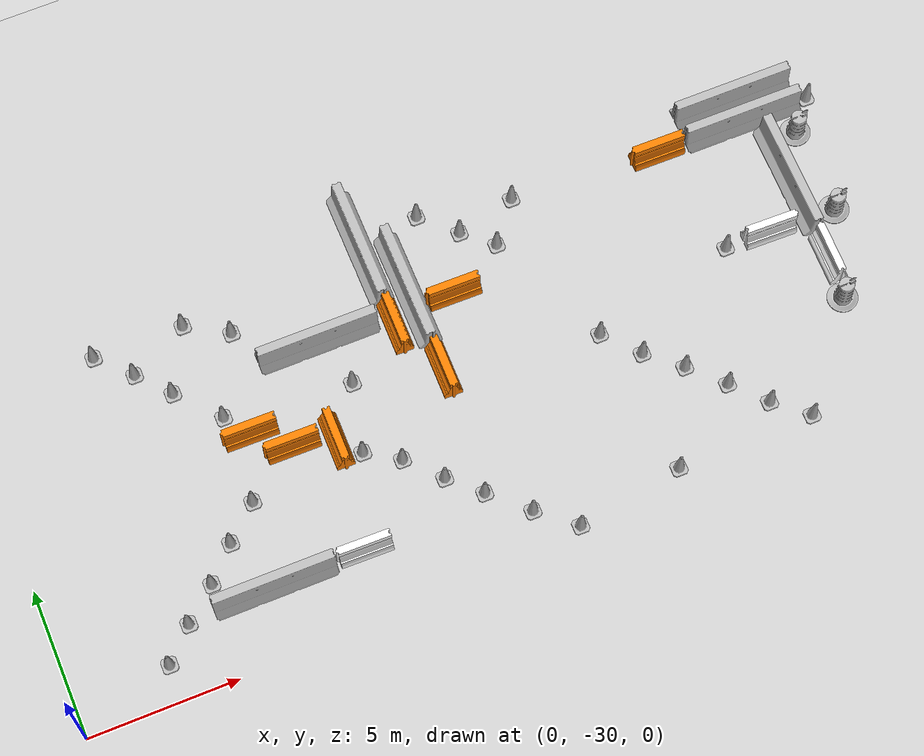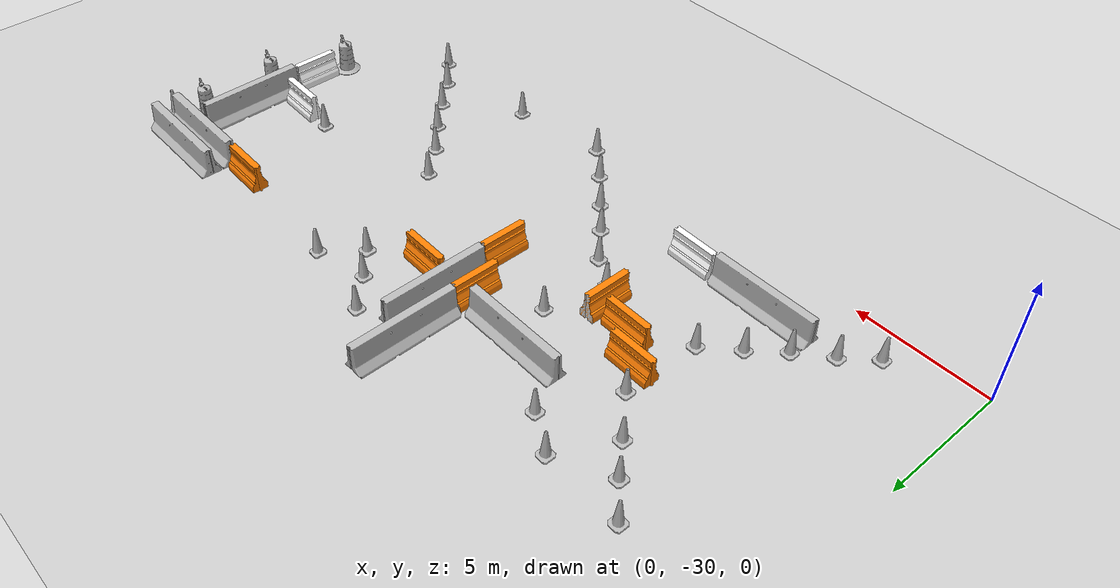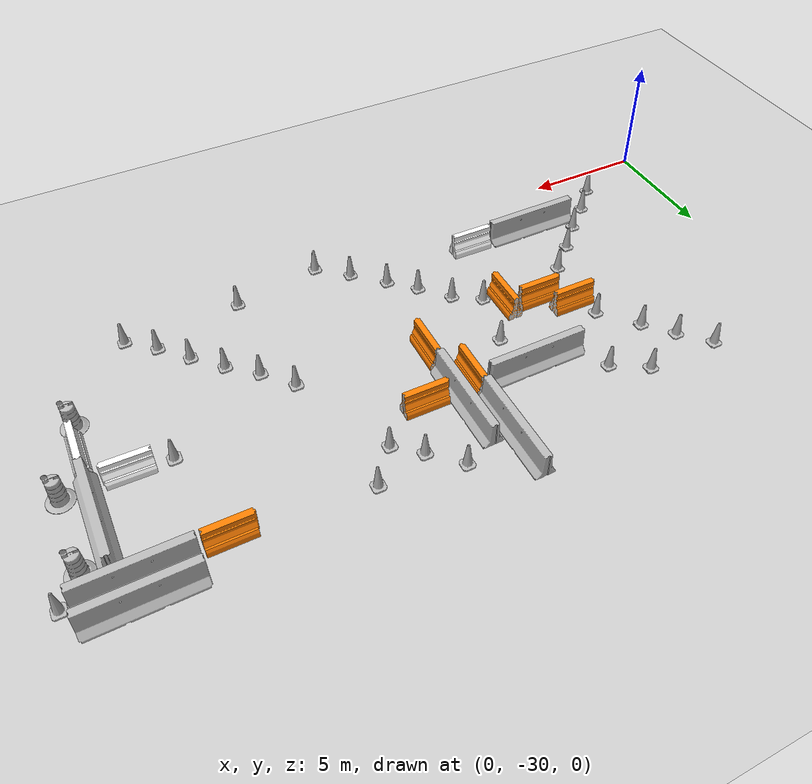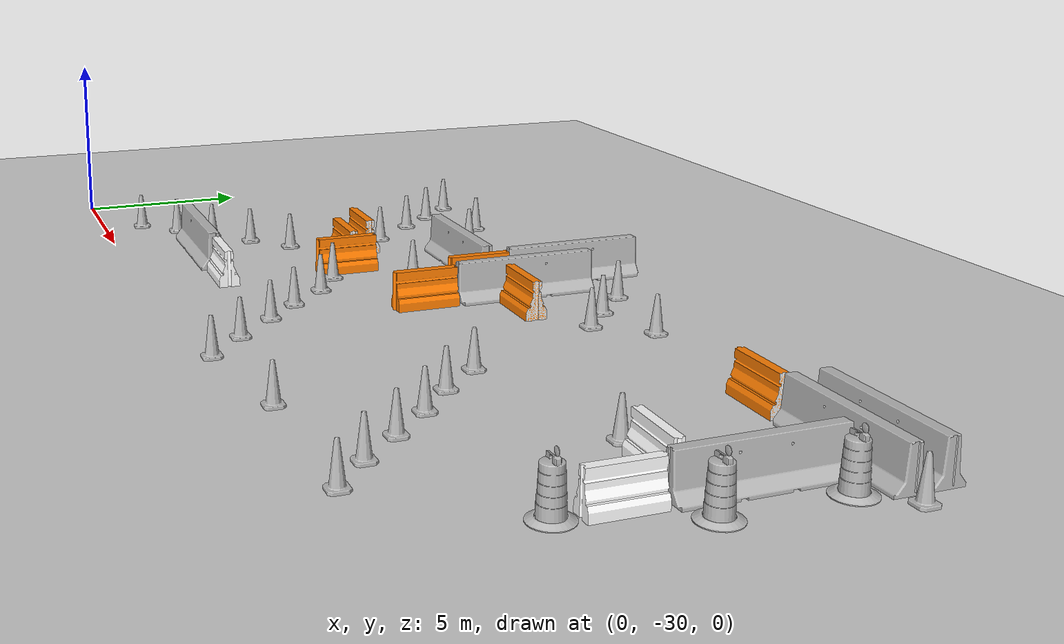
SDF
<sdf version="1.6">
 <world name="default">
  <model name="ground_plane">
   <static>1</static>
   <link name="link">
    <collision name="collision">
     <geometry><plane><normal>0 0 1</normal><size>100 100</size></plane></geometry>
     <surface>
      <contact><collide_bitmask>65535</collide_bitmask></contact>
      <friction><ode><mu>100</mu><mu2>50</mu2></ode></friction>
     </surface>
    </collision>
    <visual name="visual">
     <cast_shadows>0</cast_shadows>
     <geometry><plane><normal>0 0 1</normal><size>100 100</size></plane></geometry>
     <material>
      <script><uri>file://media/materials/scripts/gazebo.material</uri><name>Gazebo/Grey</name></script>
     </material>
    </visual>
   </link>
  </model>
  <model name="jersey_barrier_clone_clone_clone_clone_clone_clone_clone_0_clone">
   <static>1</static>
   <link name="link">
    <visual name="visual">
     <geometry><mesh><uri>model://jersey_barrier/meshes/jersey_barrier.dae</uri></mesh></geometry>
    </visual>
    <collision name="upright">
     <pose>0 0 0.5715 0 -0 0</pose>
     <geometry><box><size>4.06542 0.3063 1.143</size></box></geometry>
    </collision>
    <collision name="base">
     <pose>0 0 0.032258 0 -0 0</pose>
     <geometry><box><size>4.06542 0.8107 0.064516</size></box></geometry>
    </collision>
    <collision name="base2">
     <pose>0 0 0.1 0 -0 0</pose>
     <geometry><box><size>4.06542 0.65 0.1</size></box></geometry>
    </collision>
    <collision name="base3">
     <pose>0 0 0.2 0 -0 0</pose>
     <geometry><box><size>4.06542 0.5 0.1</size></box></geometry>
    </collision>
    <collision name="left-angle">
     <pose>0 -0.224 0.2401 0.9 -0 0</pose>
     <geometry><box><size>4.06542 0.5 0.064516</size></box></geometry>
    </collision>
    <collision name="right-angle">
     <pose>0 0.224 0.2401 -0.9 0 0</pose>
     <geometry><box><size>4.06542 0.5 0.064516</size></box></geometry>
    </collision>
   </link>
   <pose>13.6011 -18.0788 0 0 0 -1.56391</pose>
  </model>
  <model name="Construction Cone_0_clone_0_clone_clone_clone_clone_clone_3_clone_0_clone_clone_clone_1_clone_1_clone_clone_clone_0_clone_clone_clone_4_clone_1_clone_3_clone_clone_1_clone_1">
   <static>1</static>
   <link name="link">
    <collision name="collision">
     <geometry>
      <mesh><scale>10 10 10</scale><uri>model://construction_cone/meshes/construction_cone.dae</uri></mesh>
     </geometry>
    </collision>
    <visual name="visual">
     <geometry>
      <mesh><scale>10 10 10</scale><uri>model://construction_cone/meshes/construction_cone.dae</uri></mesh>
     </geometry>
    </visual>
    <inertial>
     <inertia><ixx>1</ixx><ixy>0</ixy><ixz>0</ixz><iyy>1</iyy><iyz>0</iyz><izz>1</izz></inertia>
     <mass>1</mass>
    </inertial>
   </link>
   <pose>15.7221 -17.7112 -0 0 0 -0.001073</pose>
  </model>
  <model name="Construction Cone_0_clone_0_clone_clone_clone_clone_clone_3_clone_0_clone_clone_clone_1_clone_1_clone_clone_clone_0_clone_clone_clone_4_clone_1_clone_3_clone_clone_1_clone_2">
   <static>1</static>
   <link name="link">
    <collision name="collision">
     <geometry>
      <mesh><scale>10 10 10</scale><uri>model://construction_cone/meshes/construction_cone.dae</uri></mesh>
     </geometry>
    </collision>
    <visual name="visual">
     <geometry>
      <mesh><scale>10 10 10</scale><uri>model://construction_cone/meshes/construction_cone.dae</uri></mesh>
     </geometry>
    </visual>
    <inertial>
     <inertia><ixx>1</ixx><ixy>0</ixy><ixz>0</ixz><iyy>1</iyy><iyz>0</iyz><izz>1</izz></inertia>
     <mass>1</mass>
    </inertial>
   </link>
   <pose>16.8174 -18.7637 -0 0 -1e-06 -0.001073</pose>
  </model>
  <model name="Construction Cone_0_clone_0_clone_clone_clone_clone_clone_3_clone_0_clone_clone_clone_1_clone_1_clone_clone_clone_0_clone_clone_clone_4_clone_1_clone_3_clone_clone_1_clone_4">
   <static>1</static>
   <link name="link">
    <collision name="collision">
     <geometry>
      <mesh><scale>10 10 10</scale><uri>model://construction_cone/meshes/construction_cone.dae</uri></mesh>
     </geometry>
    </collision>
    <visual name="visual">
     <geometry>
      <mesh><scale>10 10 10</scale><uri>model://construction_cone/meshes/construction_cone.dae</uri></mesh>
     </geometry>
    </visual>
    <inertial>
     <inertia><ixx>1</ixx><ixy>0</ixy><ixz>0</ixz><iyy>1</iyy><iyz>0</iyz><izz>1</izz></inertia>
     <mass>1</mass>
    </inertial>
   </link>
   <pose>18.8423 -18.2793 0 -0 -0 -0.001073</pose>
  </model>
  <model name="drc_practice_organge_jersey_barrier_clone_clone_0_clone_0_clone_0_clone_clone_clone_0_clone">
   <static>1</static>
   <link name="link">
    <visual name="visual">
     <geometry>
      <mesh><uri>model://drc_practice_orange_jersey_barrier/meshes/jersey_barrier.dae</uri></mesh>
     </geometry>
    </visual>
    <collision name="collision">
     <geometry>
      <mesh><uri>model://drc_practice_orange_jersey_barrier/meshes/jersey_barrier.dae</uri></mesh>
     </geometry>
    </collision>
   </link>
   <pose>13.6716 -21.0366 0 0 -0 0</pose>
  </model>
  <model name="jersey_barrier_clone_clone_clone_clone_clone_clone_clone_0_clone_clone">
   <static>1</static>
   <link name="link">
    <visual name="visual">
     <geometry><mesh><uri>model://jersey_barrier/meshes/jersey_barrier.dae</uri></mesh></geometry>
    </visual>
    <collision name="upright">
     <pose>0 0 0.5715 0 -0 0</pose>
     <geometry><box><size>4.06542 0.3063 1.143</size></box></geometry>
    </collision>
    <collision name="base">
     <pose>0 0 0.032258 0 -0 0</pose>
     <geometry><box><size>4.06542 0.8107 0.064516</size></box></geometry>
    </collision>
    <collision name="base2">
     <pose>0 0 0.1 0 -0 0</pose>
     <geometry><box><size>4.06542 0.65 0.1</size></box></geometry>
    </collision>
    <collision name="base3">
     <pose>0 0 0.2 0 -0 0</pose>
     <geometry><box><size>4.06542 0.5 0.1</size></box></geometry>
    </collision>
    <collision name="left-angle">
     <pose>0 -0.224 0.2401 0.9 -0 0</pose>
     <geometry><box><size>4.06542 0.5 0.064516</size></box></geometry>
    </collision>
    <collision name="right-angle">
     <pose>0 0.224 0.2401 -0.9 0 0</pose>
     <geometry><box><size>4.06542 0.5 0.064516</size></box></geometry>
    </collision>
   </link>
   <pose>14.5094 -20.0104 0 0 0 -1.56391</pose>
  </model>
  <model name="drc_practice_organge_jersey_barrier_clone_clone_0_clone_0_clone_0_clone_clone_clone_0_clone_clone">
   <static>1</static>
   <link name="link">
    <visual name="visual">
     <geometry>
      <mesh><uri>model://drc_practice_orange_jersey_barrier/meshes/jersey_barrier.dae</uri></mesh>
     </geometry>
    </visual>
    <collision name="collision">
     <geometry>
      <mesh><uri>model://drc_practice_orange_jersey_barrier/meshes/jersey_barrier.dae</uri></mesh>
     </geometry>
    </collision>
   </link>
   <pose>14.5586 -22.9967 0 0 -0 0</pose>
  </model>
  <model name="drc_practice_organge_jersey_barrier_clone_clone_clone_0_clone_clone_clone">
   <static>1</static>
   <link name="link">
    <visual name="visual">
     <geometry>
      <mesh><uri>model://drc_practice_orange_jersey_barrier/meshes/jersey_barrier.dae</uri></mesh>
     </geometry>
    </visual>
    <collision name="collision">
     <geometry>
      <mesh><uri>model://drc_practice_orange_jersey_barrier/meshes/jersey_barrier.dae</uri></mesh>
     </geometry>
    </collision>
   </link>
   <pose>15.835 -20.663 0 0 0 -1.57472</pose>
  </model>
  <model name="Construction Cone_0_clone_0_clone_clone_clone_clone_clone_3_clone_0_clone_clone_clone_1_clone_1_clone_clone_clone_0_clone_clone_clone_4_clone_1_clone_3_clone_clone_1_clone_2_clone">
   <static>1</static>
   <link name="link">
    <collision name="collision">
     <geometry>
      <mesh><scale>10 10 10</scale><uri>model://construction_cone/meshes/construction_cone.dae</uri></mesh>
     </geometry>
    </collision>
    <visual name="visual">
     <geometry>
      <mesh><scale>10 10 10</scale><uri>model://construction_cone/meshes/construction_cone.dae</uri></mesh>
     </geometry>
    </visual>
    <inertial>
     <inertia><ixx>1</ixx><ixy>0</ixy><ixz>0</ixz><iyy>1</iyy><iyz>0</iyz><izz>1</izz></inertia>
     <mass>1</mass>
    </inertial>
   </link>
   <pose>17.7817 -19.6029 -0 0 0 -0.001073</pose>
  </model>
  <model name="jersey_barrier_clone_clone_clone_0_clone_clone_clone_clone_1_clone">
   <static>1</static>
   <link name="link">
    <visual name="visual">
     <geometry><mesh><uri>model://jersey_barrier/meshes/jersey_barrier.dae</uri></mesh></geometry>
    </visual>
    <collision name="upright">
     <pose>0 0 0.5715 0 -0 0</pose>
     <geometry><box><size>4.06542 0.3063 1.143</size></box></geometry>
    </collision>
    <collision name="base">
     <pose>0 0 0.032258 0 -0 0</pose>
     <geometry><box><size>4.06542 0.8107 0.064516</size></box></geometry>
    </collision>
    <collision name="base2">
     <pose>0 0 0.1 0 -0 0</pose>
     <geometry><box><size>4.06542 0.65 0.1</size></box></geometry>
    </collision>
    <collision name="base3">
     <pose>0 0 0.2 0 -0 0</pose>
     <geometry><box><size>4.06542 0.5 0.1</size></box></geometry>
    </collision>
    <collision name="left-angle">
     <pose>0 -0.224 0.2401 0.9 -0 0</pose>
     <geometry><box><size>4.06542 0.5 0.064516</size></box></geometry>
    </collision>
    <collision name="right-angle">
     <pose>0 0.224 0.2401 -0.9 0 0</pose>
     <geometry><box><size>4.06542 0.5 0.064516</size></box></geometry>
    </collision>
   </link>
   <pose>11.1669 -20.5684 0 0 -0 0</pose>
  </model>
  <model name="Construction Cone_0_clone_0_clone_clone_clone_clone_clone_3_clone_0_clone_clone_clone_1_clone_1_clone_clone_clone_0_clone_clone_clone_4_clone_1_clone_3_clone_clone_1_clone_2_clone_0_clone_2_clone_0">
   <static>1</static>
   <link name="link">
    <collision name="collision">
     <geometry>
      <mesh><scale>10 10 10</scale><uri>model://construction_cone/meshes/construction_cone.dae</uri></mesh>
     </geometry>
    </collision>
    <visual name="visual">
     <geometry>
      <mesh><scale>10 10 10</scale><uri>model://construction_cone/meshes/construction_cone.dae</uri></mesh>
     </geometry>
    </visual>
    <inertial>
     <inertia><ixx>1</ixx><ixy>0</ixy><ixz>0</ixz><iyy>1</iyy><iyz>0</iyz><izz>1</izz></inertia>
     <mass>1</mass>
    </inertial>
   </link>
   <pose>7.32518 -18.4455 -0 0 -1e-06 -0.001073</pose>
  </model>
  <model name="Construction Cone_0_clone_0_clone_clone_clone_clone_clone_3_clone_0_clone_clone_clone_1_clone_1_clone_clone_clone_0_clone_clone_clone_4_clone_1_clone_3_clone_clone_1_clone_2_clone_0_clone_2_clone_1">
   <static>1</static>
   <link name="link">
    <collision name="collision">
     <geometry>
      <mesh><scale>10 10 10</scale><uri>model://construction_cone/meshes/construction_cone.dae</uri></mesh>
     </geometry>
    </collision>
    <visual name="visual">
     <geometry>
      <mesh><scale>10 10 10</scale><uri>model://construction_cone/meshes/construction_cone.dae</uri></mesh>
     </geometry>
    </visual>
    <inertial>
     <inertia><ixx>1</ixx><ixy>0</ixy><ixz>0</ixz><iyy>1</iyy><iyz>0</iyz><izz>1</izz></inertia>
     <mass>1</mass>
    </inertial>
   </link>
   <pose>8.69881 -19.2598 -5e-06 -4e-06 1e-06 -0.001073</pose>
  </model>
  <model name="jersey_barrier_clone_clone_clone_0_clone_clone_clone_clone_clone_clone_clone_clone">
   <static>1</static>
   <link name="link">
    <visual name="visual">
     <geometry><mesh><uri>model://jersey_barrier/meshes/jersey_barrier.dae</uri></mesh></geometry>
    </visual>
    <collision name="upright">
     <pose>0 0 0.5715 0 -0 0</pose>
     <geometry><box><size>4.06542 0.3063 1.143</size></box></geometry>
    </collision>
    <collision name="base">
     <pose>0 0 0.032258 0 -0 0</pose>
     <geometry><box><size>4.06542 0.8107 0.064516</size></box></geometry>
    </collision>
    <collision name="base2">
     <pose>0 0 0.1 0 -0 0</pose>
     <geometry><box><size>4.06542 0.65 0.1</size></box></geometry>
    </collision>
    <collision name="base3">
     <pose>0 0 0.2 0 -0 0</pose>
     <geometry><box><size>4.06542 0.5 0.1</size></box></geometry>
    </collision>
    <collision name="left-angle">
     <pose>0 -0.224 0.2401 0.9 -0 0</pose>
     <geometry><box><size>4.06542 0.5 0.064516</size></box></geometry>
    </collision>
    <collision name="right-angle">
     <pose>0 0.224 0.2401 -0.9 0 0</pose>
     <geometry><box><size>4.06542 0.5 0.064516</size></box></geometry>
    </collision>
   </link>
   <pose>26.951 -17.6663 0 0 -0 0</pose>
  </model>
  <model name="jersey_barrier_clone_clone_clone_0_clone_clone_clone_clone_clone_clone_clone_clone_0">
   <static>1</static>
   <link name="link">
    <visual name="visual">
     <geometry><mesh><uri>model://jersey_barrier/meshes/jersey_barrier.dae</uri></mesh></geometry>
    </visual>
    <collision name="upright">
     <pose>0 0 0.5715 0 -0 0</pose>
     <geometry><box><size>4.06542 0.3063 1.143</size></box></geometry>
    </collision>
    <collision name="base">
     <pose>0 0 0.032258 0 -0 0</pose>
     <geometry><box><size>4.06542 0.8107 0.064516</size></box></geometry>
    </collision>
    <collision name="base2">
     <pose>0 0 0.1 0 -0 0</pose>
     <geometry><box><size>4.06542 0.65 0.1</size></box></geometry>
    </collision>
    <collision name="base3">
     <pose>0 0 0.2 0 -0 0</pose>
     <geometry><box><size>4.06542 0.5 0.1</size></box></geometry>
    </collision>
    <collision name="left-angle">
     <pose>0 -0.224 0.2401 0.9 -0 0</pose>
     <geometry><box><size>4.06542 0.5 0.064516</size></box></geometry>
    </collision>
    <collision name="right-angle">
     <pose>0 0.224 0.2401 -0.9 0 0</pose>
     <geometry><box><size>4.06542 0.5 0.064516</size></box></geometry>
    </collision>
   </link>
   <pose>26.952 -18.556 0 0 -0 0</pose>
  </model>
  <model name="Construction Barrel_clone_clone_0_clone_clone_0_clone_clone_clone_clone">
   <static>1</static>
   <link name="link">
    <inertial>
     <pose>0 0 0.4 0 -0 0</pose>
     <mass>500</mass>
     <inertia><ixx>51.2096</ixx><iyy>51.2096</iyy><izz>25</izz><ixy>0</ixy><ixz>0</ixz><iyz>0</iyz></inertia>
    </inertial>
    <collision name="collision">
     <geometry><mesh><uri>model://construction_barrel/meshes/construction_barrel.dae</uri></mesh></geometry>
    </collision>
    <visual name="visual">
     <geometry><mesh><uri>model://construction_barrel/meshes/construction_barrel.dae</uri></mesh></geometry>
    </visual>
   </link>
   <pose>28.4908 -19.5442 0 0 -0 0.001139</pose>
  </model>
  <model name="drc_practice_organge_jersey_barrier_clone_clone_clone_0_clone_clone_0_clone_0">
   <static>1</static>
   <link name="link">
    <visual name="visual">
     <geometry>
      <mesh><uri>model://drc_practice_orange_jersey_barrier/meshes/jersey_barrier.dae</uri></mesh>
     </geometry>
    </visual>
    <collision name="collision">
     <geometry>
      <mesh><uri>model://drc_practice_orange_jersey_barrier/meshes/jersey_barrier.dae</uri></mesh>
     </geometry>
    </collision>
   </link>
   <pose>23.9083 -18.5861 0 0 0 -1.57472</pose>
  </model>
  <model name="jersey_barrier_clone_clone_clone_clone_clone_clone_clone_0_clone_0_clone">
   <static>1</static>
   <link name="link">
    <visual name="visual">
     <geometry><mesh><uri>model://jersey_barrier/meshes/jersey_barrier.dae</uri></mesh></geometry>
    </visual>
    <collision name="upright">
     <pose>0 0 0.5715 0 -0 0</pose>
     <geometry><box><size>4.06542 0.3063 1.143</size></box></geometry>
    </collision>
    <collision name="base">
     <pose>0 0 0.032258 0 -0 0</pose>
     <geometry><box><size>4.06542 0.8107 0.064516</size></box></geometry>
    </collision>
    <collision name="base2">
     <pose>0 0 0.1 0 -0 0</pose>
     <geometry><box><size>4.06542 0.65 0.1</size></box></geometry>
    </collision>
    <collision name="base3">
     <pose>0 0 0.2 0 -0 0</pose>
     <geometry><box><size>4.06542 0.5 0.1</size></box></geometry>
    </collision>
    <collision name="left-angle">
     <pose>0 -0.224 0.2401 0.9 -0 0</pose>
     <geometry><box><size>4.06542 0.5 0.064516</size></box></geometry>
    </collision>
    <collision name="right-angle">
     <pose>0 0.224 0.2401 -0.9 0 0</pose>
     <geometry><box><size>4.06542 0.5 0.064516</size></box></geometry>
    </collision>
   </link>
   <pose>27.586 -21.0671 0 0 0 -1.56391</pose>
  </model>
  <model name="drc_practice_white_jersey_barrier_clone_clone_clone_0_clone_0_clone_clone_0_clone_clone_1_clone">
   <static>1</static>
   <link name="link">
    <visual name="visual">
     <geometry>
      <mesh><uri>model://drc_practice_white_jersey_barrier/meshes/jersey_barrier.dae</uri></mesh>
     </geometry>
    </visual>
    <collision name="collision">
     <geometry>
      <mesh><uri>model://drc_practice_white_jersey_barrier/meshes/jersey_barrier.dae</uri></mesh>
     </geometry>
    </collision>
   </link>
   <pose>27.5893 -24.0652 0 0 -0 3.13979</pose>
  </model>
  <model name="Construction Barrel_clone_clone_0_clone_clone_0_clone_clone_clone_clone_clone_0">
   <static>1</static>
   <link name="link">
    <inertial>
     <pose>0 0 0.4 0 -0 0</pose>
     <mass>500</mass>
     <inertia><ixx>51.2096</ixx><iyy>51.2096</iyy><izz>25</izz><ixy>0</ixy><ixz>0</ixz><iyz>0</iyz></inertia>
    </inertial>
    <collision name="collision">
     <geometry><mesh><uri>model://construction_barrel/meshes/construction_barrel.dae</uri></mesh></geometry>
    </collision>
    <visual name="visual">
     <geometry><mesh><uri>model://construction_barrel/meshes/construction_barrel.dae</uri></mesh></geometry>
    </visual>
   </link>
   <pose>27.4658 -25.4803 0 0 -0 0.001151</pose>
  </model>
  <model name="Construction Barrel_clone_clone_0_clone_clone_0_clone_clone_clone_clone_clone_1">
   <static>1</static>
   <link name="link">
    <inertial>
     <pose>0 0 0.4 0 -0 0</pose>
     <mass>500</mass>
     <inertia><ixx>51.2096</ixx><iyy>51.2096</iyy><izz>25</izz><ixy>0</ixy><ixz>0</ixz><iyz>0</iyz></inertia>
    </inertial>
    <collision name="collision">
     <geometry><mesh><uri>model://construction_barrel/meshes/construction_barrel.dae</uri></mesh></geometry>
    </collision>
    <visual name="visual">
     <geometry><mesh><uri>model://construction_barrel/meshes/construction_barrel.dae</uri></mesh></geometry>
    </visual>
   </link>
   <pose>28.5116 -22.5513 -1e-06 -3e-06 -1e-06 0.001141</pose>
  </model>
  <model name="Construction Cone_0_clone_0_clone_clone_clone_clone_clone_3_clone_0_clone_clone_clone_1_clone_1_clone_clone_clone_0_clone_clone_clone_4_clone_1_clone_3_clone_clone_1_clone_2_clone_clone">
   <static>1</static>
   <link name="link">
    <collision name="collision">
     <geometry>
      <mesh><scale>10 10 10</scale><uri>model://construction_cone/meshes/construction_cone.dae</uri></mesh>
     </geometry>
    </collision>
    <visual name="visual">
     <geometry>
      <mesh><scale>10 10 10</scale><uri>model://construction_cone/meshes/construction_cone.dae</uri></mesh>
     </geometry>
    </visual>
    <inertial>
     <inertia><ixx>1</ixx><ixy>0</ixy><ixz>0</ixz><iyy>1</iyy><iyz>0</iyz><izz>1</izz></inertia>
     <mass>1</mass>
    </inertial>
   </link>
   <pose>19.6724 -23.7253 -0 0 -1e-06 -0.001073</pose>
  </model>
  <model name="Construction Cone_0_clone_0_clone_clone_clone_clone_clone_3_clone_0_clone_clone_clone_1_clone_1_clone_clone_clone_0_clone_clone_clone_4_clone_1_clone_3_clone_clone_1_clone_2_clone_clone_0">
   <static>1</static>
   <link name="link">
    <collision name="collision">
     <geometry>
      <mesh><scale>10 10 10</scale><uri>model://construction_cone/meshes/construction_cone.dae</uri></mesh>
     </geometry>
    </collision>
    <visual name="visual">
     <geometry>
      <mesh><scale>10 10 10</scale><uri>model://construction_cone/meshes/construction_cone.dae</uri></mesh>
     </geometry>
    </visual>
    <inertial>
     <inertia><ixx>1</ixx><ixy>0</ixy><ixz>0</ixz><iyy>1</iyy><iyz>0</iyz><izz>1</izz></inertia>
     <mass>1</mass>
    </inertial>
   </link>
   <pose>20.6781 -24.846 -0 0 0 -0.001073</pose>
  </model>
  <model name="Construction Cone_0_clone_0_clone_clone_clone_clone_clone_3_clone_0_clone_clone_clone_1_clone_1_clone_clone_clone_0_clone_clone_clone_4_clone_1_clone_3_clone_clone_1_clone_2_clone_clone_1">
   <static>1</static>
   <link name="link">
    <collision name="collision">
     <geometry>
      <mesh><scale>10 10 10</scale><uri>model://construction_cone/meshes/construction_cone.dae</uri></mesh>
     </geometry>
    </collision>
    <visual name="visual">
     <geometry>
      <mesh><scale>10 10 10</scale><uri>model://construction_cone/meshes/construction_cone.dae</uri></mesh>
     </geometry>
    </visual>
    <inertial>
     <inertia><ixx>1</ixx><ixy>0</ixy><ixz>0</ixz><iyy>1</iyy><iyz>0</iyz><izz>1</izz></inertia>
     <mass>1</mass>
    </inertial>
   </link>
   <pose>21.7619 -25.7839 -0 0 -1e-06 -0.001073</pose>
  </model>
  <model name="Construction Cone_0_clone_0_clone_clone_clone_clone_clone_3_clone_0_clone_clone_clone_1_clone_1_clone_clone_clone_0_clone_clone_clone_4_clone_1_clone_3_clone_clone_1_clone_2_clone_clone_2">
   <static>1</static>
   <link name="link">
    <collision name="collision">
     <geometry>
      <mesh><scale>10 10 10</scale><uri>model://construction_cone/meshes/construction_cone.dae</uri></mesh>
     </geometry>
    </collision>
    <visual name="visual">
     <geometry>
      <mesh><scale>10 10 10</scale><uri>model://construction_cone/meshes/construction_cone.dae</uri></mesh>
     </geometry>
    </visual>
    <inertial>
     <inertia><ixx>1</ixx><ixy>0</ixy><ixz>0</ixz><iyy>1</iyy><iyz>0</iyz><izz>1</izz></inertia>
     <mass>1</mass>
    </inertial>
   </link>
   <pose>22.7988 -26.8245 0 -0 -0 -0.001073</pose>
  </model>
  <model name="Construction Cone_0_clone_0_clone_clone_clone_clone_clone_3_clone_0_clone_clone_clone_1_clone_1_clone_clone_clone_0_clone_clone_clone_4_clone_1_clone_3_clone_clone_1_clone_2_clone_clone_3">
   <static>1</static>
   <link name="link">
    <collision name="collision">
     <geometry>
      <mesh><scale>10 10 10</scale><uri>model://construction_cone/meshes/construction_cone.dae</uri></mesh>
     </geometry>
    </collision>
    <visual name="visual">
     <geometry>
      <mesh><scale>10 10 10</scale><uri>model://construction_cone/meshes/construction_cone.dae</uri></mesh>
     </geometry>
    </visual>
    <inertial>
     <inertia><ixx>1</ixx><ixy>0</ixy><ixz>0</ixz><iyy>1</iyy><iyz>0</iyz><izz>1</izz></inertia>
     <mass>1</mass>
    </inertial>
   </link>
   <pose>23.7944 -27.8776 -0 0 0 -0.001073</pose>
  </model>
  <model name="Construction Cone_0_clone_0_clone_clone_clone_clone_clone_3_clone_0_clone_clone_clone_1_clone_1_clone_clone_clone_0_clone_clone_clone_4_clone_1_clone_3_clone_clone_1_clone_2_clone_clone_4">
   <static>1</static>
   <link name="link">
    <collision name="collision">
     <geometry>
      <mesh><scale>10 10 10</scale><uri>model://construction_cone/meshes/construction_cone.dae</uri></mesh>
     </geometry>
    </collision>
    <visual name="visual">
     <geometry>
      <mesh><scale>10 10 10</scale><uri>model://construction_cone/meshes/construction_cone.dae</uri></mesh>
     </geometry>
    </visual>
    <inertial>
     <inertia><ixx>1</ixx><ixy>0</ixy><ixz>0</ixz><iyy>1</iyy><iyz>0</iyz><izz>1</izz></inertia>
     <mass>1</mass>
    </inertial>
   </link>
   <pose>24.8689 -28.7862 -0 0 0 -0.001073</pose>
  </model>
  <model name="Construction Cone_0_clone_0_clone_clone_clone_clone_clone_3_clone_0_clone_clone_clone_1_clone_1_clone_clone_clone_0_clone_clone_clone_4_clone_1_clone_3_clone_clone_1_clone_2_clone_clone_5">
   <static>1</static>
   <link name="link">
    <collision name="collision">
     <geometry>
      <mesh><scale>10 10 10</scale><uri>model://construction_cone/meshes/construction_cone.dae</uri></mesh>
     </geometry>
    </collision>
    <visual name="visual">
     <geometry>
      <mesh><scale>10 10 10</scale><uri>model://construction_cone/meshes/construction_cone.dae</uri></mesh>
     </geometry>
    </visual>
    <inertial>
     <inertia><ixx>1</ixx><ixy>0</ixy><ixz>0</ixz><iyy>1</iyy><iyz>0</iyz><izz>1</izz></inertia>
     <mass>1</mass>
    </inertial>
   </link>
   <pose>20.2278 -28.8225 -0 0 -1e-06 -0.001073</pose>
  </model>
  <model name="Construction Cone_0_clone_0_clone_clone_clone_clone_clone_3_clone_0_clone_clone_clone_1_clone_1_clone_clone_clone_0_clone_clone_clone_4_clone_1_clone_3_clone_clone_1_clone_2_clone_clone_5_clone">
   <static>1</static>
   <link name="link">
    <collision name="collision">
     <geometry>
      <mesh><scale>10 10 10</scale><uri>model://construction_cone/meshes/construction_cone.dae</uri></mesh>
     </geometry>
    </collision>
    <visual name="visual">
     <geometry>
      <mesh><scale>10 10 10</scale><uri>model://construction_cone/meshes/construction_cone.dae</uri></mesh>
     </geometry>
    </visual>
    <inertial>
     <inertia><ixx>1</ixx><ixy>0</ixy><ixz>0</ixz><iyy>1</iyy><iyz>0</iyz><izz>1</izz></inertia>
     <mass>1</mass>
    </inertial>
   </link>
   <pose>16.6049 -29.4093 0 -0 -0 -0.001073</pose>
  </model>
  <model name="Construction Cone_0_clone_0_clone_clone_clone_clone_clone_3_clone_0_clone_clone_clone_1_clone_1_clone_clone_clone_0_clone_clone_clone_4_clone_1_clone_3_clone_clone_1_clone_2_clone_clone_5_clone_0">
   <static>1</static>
   <link name="link">
    <collision name="collision">
     <geometry>
      <mesh><scale>10 10 10</scale><uri>model://construction_cone/meshes/construction_cone.dae</uri></mesh>
     </geometry>
    </collision>
    <visual name="visual">
     <geometry>
      <mesh><scale>10 10 10</scale><uri>model://construction_cone/meshes/construction_cone.dae</uri></mesh>
     </geometry>
    </visual>
    <inertial>
     <inertia><ixx>1</ixx><ixy>0</ixy><ixz>0</ixz><iyy>1</iyy><iyz>0</iyz><izz>1</izz></inertia>
     <mass>1</mass>
    </inertial>
   </link>
   <pose>15.4021 -28.3979 -0 -0 -0 -0.001073</pose>
  </model>
  <model name="Construction Cone_0_clone_0_clone_clone_clone_clone_clone_3_clone_0_clone_clone_clone_1_clone_1_clone_clone_clone_0_clone_clone_clone_4_clone_1_clone_3_clone_clone_1_clone_2_clone_clone_5_clone_1">
   <static>1</static>
   <link name="link">
    <collision name="collision">
     <geometry>
      <mesh><scale>10 10 10</scale><uri>model://construction_cone/meshes/construction_cone.dae</uri></mesh>
     </geometry>
    </collision>
    <visual name="visual">
     <geometry>
      <mesh><scale>10 10 10</scale><uri>model://construction_cone/meshes/construction_cone.dae</uri></mesh>
     </geometry>
    </visual>
    <inertial>
     <inertia><ixx>1</ixx><ixy>0</ixy><ixz>0</ixz><iyy>1</iyy><iyz>0</iyz><izz>1</izz></inertia>
     <mass>1</mass>
    </inertial>
   </link>
   <pose>14.2195 -27.2897 -0 0 0 -0.001073</pose>
  </model>
  <model name="Construction Cone_0_clone_0_clone_clone_clone_clone_clone_3_clone_0_clone_clone_clone_1_clone_1_clone_clone_clone_0_clone_clone_clone_4_clone_1_clone_3_clone_clone_1_clone_2_clone_clone_5_clone_2">
   <static>1</static>
   <link name="link">
    <collision name="collision">
     <geometry>
      <mesh><scale>10 10 10</scale><uri>model://construction_cone/meshes/construction_cone.dae</uri></mesh>
     </geometry>
    </collision>
    <visual name="visual">
     <geometry>
      <mesh><scale>10 10 10</scale><uri>model://construction_cone/meshes/construction_cone.dae</uri></mesh>
     </geometry>
    </visual>
    <inertial>
     <inertia><ixx>1</ixx><ixy>0</ixy><ixz>0</ixz><iyy>1</iyy><iyz>0</iyz><izz>1</izz></inertia>
     <mass>1</mass>
    </inertial>
   </link>
   <pose>13.2359 -26.3638 -0 0 0 -0.001073</pose>
  </model>
  <model name="Construction Cone_0_clone_0_clone_clone_clone_clone_clone_3_clone_0_clone_clone_clone_1_clone_1_clone_clone_clone_0_clone_clone_clone_4_clone_1_clone_3_clone_clone_1_clone_2_clone_clone_5_clone_3">
   <static>1</static>
   <link name="link">
    <collision name="collision">
     <geometry>
      <mesh><scale>10 10 10</scale><uri>model://construction_cone/meshes/construction_cone.dae</uri></mesh>
     </geometry>
    </collision>
    <visual name="visual">
     <geometry>
      <mesh><scale>10 10 10</scale><uri>model://construction_cone/meshes/construction_cone.dae</uri></mesh>
     </geometry>
    </visual>
    <inertial>
     <inertia><ixx>1</ixx><ixy>0</ixy><ixz>0</ixz><iyy>1</iyy><iyz>0</iyz><izz>1</izz></inertia>
     <mass>1</mass>
    </inertial>
   </link>
   <pose>12.2245 -25.2933 -6e-06 2e-06 -0 -0.001073</pose>
  </model>
  <model name="drc_practice_organge_jersey_barrier_clone_clone_0_clone_0_clone_0_clone_clone_clone_0_clone_clone_clone">
   <static>1</static>
   <link name="link">
    <visual name="visual">
     <geometry>
      <mesh><uri>model://drc_practice_orange_jersey_barrier/meshes/jersey_barrier.dae</uri></mesh>
     </geometry>
    </visual>
    <collision name="collision">
     <geometry>
      <mesh><uri>model://drc_practice_orange_jersey_barrier/meshes/jersey_barrier.dae</uri></mesh>
     </geometry>
    </collision>
   </link>
   <pose>10.5096 -23.9606 0 0 -0 0</pose>
  </model>
  <model name="Construction Cone_0_clone_0_clone_clone_clone_clone_clone_3_clone_0_clone_clone_clone_1_clone_1_clone_clone_clone_0_clone_clone_clone_4_clone_1_clone_3_clone_clone_1_clone_2_clone_0_clone">
   <static>1</static>
   <link name="link">
    <collision name="collision">
     <geometry>
      <mesh><scale>10 10 10</scale><uri>model://construction_cone/meshes/construction_cone.dae</uri></mesh>
     </geometry>
    </collision>
    <visual name="visual">
     <geometry>
      <mesh><scale>10 10 10</scale><uri>model://construction_cone/meshes/construction_cone.dae</uri></mesh>
     </geometry>
    </visual>
    <inertial>
     <inertia><ixx>1</ixx><ixy>0</ixy><ixz>0</ixz><iyy>1</iyy><iyz>0</iyz><izz>1</izz></inertia>
     <mass>1</mass>
    </inertial>
   </link>
   <pose>11.1479 -24.6005 -6e-06 -4e-06 -0 -0.001073</pose>
  </model>
  <model name="Construction Cone_0_clone_0_clone_clone_clone_clone_clone_3_clone_0_clone_clone_clone_1_clone_1_clone_clone_clone_0_clone_clone_clone_4_clone_1_clone_3_clone_clone_1_clone_2_clone_0_clone_clone">
   <static>1</static>
   <link name="link">
    <collision name="collision">
     <geometry>
      <mesh><scale>10 10 10</scale><uri>model://construction_cone/meshes/construction_cone.dae</uri></mesh>
     </geometry>
    </collision>
    <visual name="visual">
     <geometry>
      <mesh><scale>10 10 10</scale><uri>model://construction_cone/meshes/construction_cone.dae</uri></mesh>
     </geometry>
    </visual>
    <inertial>
     <inertia><ixx>1</ixx><ixy>0</ixy><ixz>0</ixz><iyy>1</iyy><iyz>0</iyz><izz>1</izz></inertia>
     <mass>1</mass>
    </inertial>
   </link>
   <pose>11.6926 -22.3027 -5e-06 -4e-06 1e-06 -0.001073</pose>
  </model>
  <model name="drc_practice_organge_jersey_barrier_clone_clone_clone_0_clone_clone_clone_clone">
   <static>1</static>
   <link name="link">
    <visual name="visual">
     <geometry>
      <mesh><uri>model://drc_practice_orange_jersey_barrier/meshes/jersey_barrier.dae</uri></mesh>
     </geometry>
    </visual>
    <collision name="collision">
     <geometry>
      <mesh><uri>model://drc_practice_orange_jersey_barrier/meshes/jersey_barrier.dae</uri></mesh>
     </geometry>
    </collision>
   </link>
   <pose>9.1621 -23.5781 0 0 0 -1.57472</pose>
  </model>
  <model name="drc_practice_organge_jersey_barrier_clone_clone_clone_0_clone_clone_clone_clone_0">
   <static>1</static>
   <link name="link">
    <visual name="visual">
     <geometry>
      <mesh><uri>model://drc_practice_orange_jersey_barrier/meshes/jersey_barrier.dae</uri></mesh>
     </geometry>
    </visual>
    <collision name="collision">
     <geometry>
      <mesh><uri>model://drc_practice_orange_jersey_barrier/meshes/jersey_barrier.dae</uri></mesh>
     </geometry>
    </collision>
   </link>
   <pose>8.07299 -22.6922 0 0 0 -1.57472</pose>
  </model>
  <model name="Construction Cone_0_clone_0_clone_clone_clone_clone_clone_3_clone_0_clone_clone_clone_1_clone_1_clone_clone_clone_0_clone_clone_clone_4_clone_1_clone_3_clone_clone_1_clone_2_clone_0_clone_clone_clone">
   <static>1</static>
   <link name="link">
    <collision name="collision">
     <geometry>
      <mesh><scale>10 10 10</scale><uri>model://construction_cone/meshes/construction_cone.dae</uri></mesh>
     </geometry>
    </collision>
    <visual name="visual">
     <geometry>
      <mesh><scale>10 10 10</scale><uri>model://construction_cone/meshes/construction_cone.dae</uri></mesh>
     </geometry>
    </visual>
    <inertial>
     <inertia><ixx>1</ixx><ixy>0</ixy><ixz>0</ixz><iyy>1</iyy><iyz>0</iyz><izz>1</izz></inertia>
     <mass>1</mass>
    </inertial>
   </link>
   <pose>7.46808 -21.855 -0 0 -1e-06 -0.001073</pose>
  </model>
  <model name="Construction Cone_0_clone_0_clone_clone_clone_clone_clone_3_clone_0_clone_clone_clone_1_clone_1_clone_clone_clone_0_clone_clone_clone_4_clone_1_clone_3_clone_clone_1_clone_2_clone_0_clone_clone_clone_0">
   <static>1</static>
   <link name="link">
    <collision name="collision">
     <geometry>
      <mesh><scale>10 10 10</scale><uri>model://construction_cone/meshes/construction_cone.dae</uri></mesh>
     </geometry>
    </collision>
    <visual name="visual">
     <geometry>
      <mesh><scale>10 10 10</scale><uri>model://construction_cone/meshes/construction_cone.dae</uri></mesh>
     </geometry>
    </visual>
    <inertial>
     <inertia><ixx>1</ixx><ixy>0</ixy><ixz>0</ixz><iyy>1</iyy><iyz>0</iyz><izz>1</izz></inertia>
     <mass>1</mass>
    </inertial>
   </link>
   <pose>6.24271 -20.4962 -0 0 0 -0.001073</pose>
  </model>
  <model name="Construction Cone_0_clone_0_clone_clone_clone_clone_clone_3_clone_0_clone_clone_clone_1_clone_1_clone_clone_clone_0_clone_clone_clone_4_clone_1_clone_3_clone_clone_1_clone_2_clone_0_clone_clone_clone_1">
   <static>1</static>
   <link name="link">
    <collision name="collision">
     <geometry>
      <mesh><scale>10 10 10</scale><uri>model://construction_cone/meshes/construction_cone.dae</uri></mesh>
     </geometry>
    </collision>
    <visual name="visual">
     <geometry>
      <mesh><scale>10 10 10</scale><uri>model://construction_cone/meshes/construction_cone.dae</uri></mesh>
     </geometry>
    </visual>
    <inertial>
     <inertia><ixx>1</ixx><ixy>0</ixy><ixz>0</ixz><iyy>1</iyy><iyz>0</iyz><izz>1</izz></inertia>
     <mass>1</mass>
    </inertial>
   </link>
   <pose>5.3236 -19.4502 -0 0 -1e-06 -0.001073</pose>
  </model>
  <model name="Construction Cone_0_clone_0_clone_clone_clone_clone_clone_3_clone_0_clone_clone_clone_1_clone_1_clone_clone_clone_0_clone_clone_clone_4_clone_1_clone_3_clone_clone_1_clone_2_clone_0_clone_clone_clone_2">
   <static>1</static>
   <link name="link">
    <collision name="collision">
     <geometry>
      <mesh><scale>10 10 10</scale><uri>model://construction_cone/meshes/construction_cone.dae</uri></mesh>
     </geometry>
    </collision>
    <visual name="visual">
     <geometry>
      <mesh><scale>10 10 10</scale><uri>model://construction_cone/meshes/construction_cone.dae</uri></mesh>
     </geometry>
    </visual>
    <inertial>
     <inertia><ixx>1</ixx><ixy>0</ixy><ixz>0</ixz><iyy>1</iyy><iyz>0</iyz><izz>1</izz></inertia>
     <mass>1</mass>
    </inertial>
   </link>
   <pose>4.29865 -18.4055 -0 0 0 -0.001073</pose>
  </model>
  <model name="Construction Cone_0_clone_0_clone_clone_clone_clone_clone_3_clone_0_clone_clone_clone_1_clone_1_clone_clone_clone_0_clone_clone_clone_4_clone_1_clone_3_clone_clone_1_clone_2_clone_0_clone_clone_0">
   <static>1</static>
   <link name="link">
    <collision name="collision">
     <geometry>
      <mesh><scale>10 10 10</scale><uri>model://construction_cone/meshes/construction_cone.dae</uri></mesh>
     </geometry>
    </collision>
    <visual name="visual">
     <geometry>
      <mesh><scale>10 10 10</scale><uri>model://construction_cone/meshes/construction_cone.dae</uri></mesh>
     </geometry>
    </visual>
    <inertial>
     <inertia><ixx>1</ixx><ixy>0</ixy><ixz>0</ixz><iyy>1</iyy><iyz>0</iyz><izz>1</izz></inertia>
     <mass>1</mass>
    </inertial>
   </link>
   <pose>7.34181 -24.8285 -0 0 0 -0.001073</pose>
  </model>
  <model name="Construction Cone_0_clone_0_clone_clone_clone_clone_clone_3_clone_0_clone_clone_clone_1_clone_1_clone_clone_clone_0_clone_clone_clone_4_clone_1_clone_3_clone_clone_1_clone_2_clone_0_clone_clone_1">
   <static>1</static>
   <link name="link">
    <collision name="collision">
     <geometry>
      <mesh><scale>10 10 10</scale><uri>model://construction_cone/meshes/construction_cone.dae</uri></mesh>
     </geometry>
    </collision>
    <visual name="visual">
     <geometry>
      <mesh><scale>10 10 10</scale><uri>model://construction_cone/meshes/construction_cone.dae</uri></mesh>
     </geometry>
    </visual>
    <inertial>
     <inertia><ixx>1</ixx><ixy>0</ixy><ixz>0</ixz><iyy>1</iyy><iyz>0</iyz><izz>1</izz></inertia>
     <mass>1</mass>
    </inertial>
   </link>
   <pose>6.22538 -25.8389 -0 0 -1e-06 -0.001073</pose>
  </model>
  <model name="Construction Cone_0_clone_0_clone_clone_clone_clone_clone_3_clone_0_clone_clone_clone_1_clone_1_clone_clone_clone_0_clone_clone_clone_4_clone_1_clone_3_clone_clone_1_clone_2_clone_0_clone_clone_2">
   <static>1</static>
   <link name="link">
    <collision name="collision">
     <geometry>
      <mesh><scale>10 10 10</scale><uri>model://construction_cone/meshes/construction_cone.dae</uri></mesh>
     </geometry>
    </collision>
    <visual name="visual">
     <geometry>
      <mesh><scale>10 10 10</scale><uri>model://construction_cone/meshes/construction_cone.dae</uri></mesh>
     </geometry>
    </visual>
    <inertial>
     <inertia><ixx>1</ixx><ixy>0</ixy><ixz>0</ixz><iyy>1</iyy><iyz>0</iyz><izz>1</izz></inertia>
     <mass>1</mass>
    </inertial>
   </link>
   <pose>5.21983 -26.8632 -0 0 0 -0.001073</pose>
  </model>
  <model name="Construction Cone_0_clone_0_clone_clone_clone_clone_clone_3_clone_0_clone_clone_clone_1_clone_1_clone_clone_clone_0_clone_clone_clone_4_clone_1_clone_3_clone_clone_1_clone_2_clone_0_clone_clone_3">
   <static>1</static>
   <link name="link">
    <collision name="collision">
     <geometry>
      <mesh><scale>10 10 10</scale><uri>model://construction_cone/meshes/construction_cone.dae</uri></mesh>
     </geometry>
    </collision>
    <visual name="visual">
     <geometry>
      <mesh><scale>10 10 10</scale><uri>model://construction_cone/meshes/construction_cone.dae</uri></mesh>
     </geometry>
    </visual>
    <inertial>
     <inertia><ixx>1</ixx><ixy>0</ixy><ixz>0</ixz><iyy>1</iyy><iyz>0</iyz><izz>1</izz></inertia>
     <mass>1</mass>
    </inertial>
   </link>
   <pose>4.11854 -27.7936 -0 0 -1e-06 -0.001073</pose>
  </model>
  <model name="Construction Cone_0_clone_0_clone_clone_clone_clone_clone_3_clone_0_clone_clone_clone_1_clone_1_clone_clone_clone_0_clone_clone_clone_4_clone_1_clone_3_clone_clone_1_clone_2_clone_0_clone_clone_4">
   <static>1</static>
   <link name="link">
    <collision name="collision">
     <geometry>
      <mesh><scale>10 10 10</scale><uri>model://construction_cone/meshes/construction_cone.dae</uri></mesh>
     </geometry>
    </collision>
    <visual name="visual">
     <geometry>
      <mesh><scale>10 10 10</scale><uri>model://construction_cone/meshes/construction_cone.dae</uri></mesh>
     </geometry>
    </visual>
    <inertial>
     <inertia><ixx>1</ixx><ixy>0</ixy><ixz>0</ixz><iyy>1</iyy><iyz>0</iyz><izz>1</izz></inertia>
     <mass>1</mass>
    </inertial>
   </link>
   <pose>3.1288 -28.7865 -8e-06 0 1e-06 -0.001073</pose>
  </model>
  <model name="jersey_barrier_clone_clone_clone_0_clone_clone_clone_clone_1_clone_clone">
   <static>1</static>
   <link name="link">
    <visual name="visual">
     <geometry><mesh><uri>model://jersey_barrier/meshes/jersey_barrier.dae</uri></mesh></geometry>
    </visual>
    <collision name="upright">
     <pose>0 0 0.5715 0 -0 0</pose>
     <geometry><box><size>4.06542 0.3063 1.143</size></box></geometry>
    </collision>
    <collision name="base">
     <pose>0 0 0.032258 0 -0 0</pose>
     <geometry><box><size>4.06542 0.8107 0.064516</size></box></geometry>
    </collision>
    <collision name="base2">
     <pose>0 0 0.1 0 -0 0</pose>
     <geometry><box><size>4.06542 0.65 0.1</size></box></geometry>
    </collision>
    <collision name="base3">
     <pose>0 0 0.2 0 -0 0</pose>
     <geometry><box><size>4.06542 0.5 0.1</size></box></geometry>
    </collision>
    <collision name="left-angle">
     <pose>0 -0.224 0.2401 0.9 -0 0</pose>
     <geometry><box><size>4.06542 0.5 0.064516</size></box></geometry>
    </collision>
    <collision name="right-angle">
     <pose>0 0.224 0.2401 -0.9 0 0</pose>
     <geometry><box><size>4.06542 0.5 0.064516</size></box></geometry>
    </collision>
   </link>
   <pose>7.02033 -27.624 0 0 -0 0</pose>
  </model>
  <model name="drc_practice_white_jersey_barrier_clone_clone_clone_clone_clone_clone_clone_clone_clone_clone_0_clone_clone_0_clone_clone_clone">
   <static>1</static>
   <link name="link">
    <visual name="visual">
     <geometry>
      <mesh><uri>model://drc_practice_white_jersey_barrier/meshes/jersey_barrier.dae</uri></mesh>
     </geometry>
    </visual>
    <collision name="collision">
     <geometry>
      <mesh><uri>model://drc_practice_white_jersey_barrier/meshes/jersey_barrier.dae</uri></mesh>
     </geometry>
    </collision>
   </link>
   <pose>10.0429 -27.6142 0 0 0 -1.58176</pose>
  </model>
  <model name="Construction Cone_0_clone_0_clone_clone_clone_clone_clone_3_clone_0_clone_clone_clone_1_clone_1_clone_clone_clone_0_clone_clone_clone_4_clone_1_clone_3_clone_clone_1_clone_7_clone">
   <static>1</static>
   <link name="link">
    <collision name="collision">
     <geometry>
      <mesh><scale>10 10 10</scale><uri>model://construction_cone/meshes/construction_cone.dae</uri></mesh>
     </geometry>
    </collision>
    <visual name="visual">
     <geometry>
      <mesh><scale>10 10 10</scale><uri>model://construction_cone/meshes/construction_cone.dae</uri></mesh>
     </geometry>
    </visual>
    <inertial>
     <inertia><ixx>1</ixx><ixy>0</ixy><ixz>0</ixz><iyy>1</iyy><iyz>0</iyz><izz>1</izz></inertia>
     <mass>1</mass>
    </inertial>
   </link>
   <pose>29.3169 -18.566 -0 0 -1e-06 -0.001073</pose>
  </model>
  <model name="drc_practice_white_jersey_barrier_clone_clone_clone_0_clone_0_clone_clone_0_clone_clone_1_clone_clone">
   <static>1</static>
   <link name="link">
    <visual name="visual">
     <geometry>
      <mesh><uri>model://drc_practice_white_jersey_barrier/meshes/jersey_barrier.dae</uri></mesh>
     </geometry>
    </visual>
    <collision name="collision">
     <geometry>
      <mesh><uri>model://drc_practice_white_jersey_barrier/meshes/jersey_barrier.dae</uri></mesh>
     </geometry>
    </collision>
   </link>
   <pose>26.1633 -22.5317 0 0 -0 1.55465</pose>
  </model>
  <model name="Construction Cone_0_clone_0_clone_clone_clone_clone_clone_3_clone_0_clone_clone_clone_1_clone_1_clone_clone_clone_0_clone_clone_clone_4_clone_1_clone_3_clone_clone_1_clone_7_clone_clone">
   <static>1</static>
   <link name="link">
    <collision name="collision">
     <geometry>
      <mesh><scale>10 10 10</scale><uri>model://construction_cone/meshes/construction_cone.dae</uri></mesh>
     </geometry>
    </collision>
    <visual name="visual">
     <geometry>
      <mesh><scale>10 10 10</scale><uri>model://construction_cone/meshes/construction_cone.dae</uri></mesh>
     </geometry>
    </visual>
    <inertial>
     <inertia><ixx>1</ixx><ixy>0</ixy><ixz>0</ixz><iyy>1</iyy><iyz>0</iyz><izz>1</izz></inertia>
     <mass>1</mass>
    </inertial>
   </link>
   <pose>24.6604 -22.4944 -8e-06 -6e-06 -0 -0.001073</pose>
  </model>
 </world>
</sdf>
